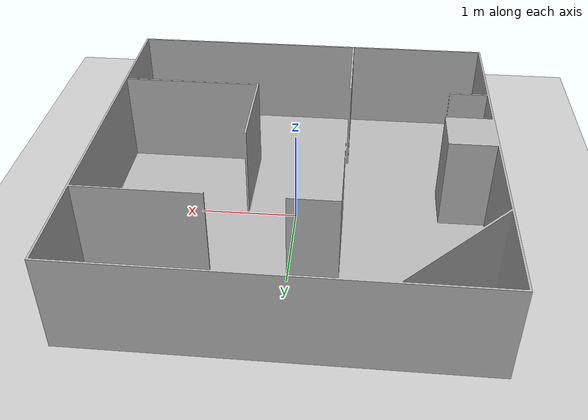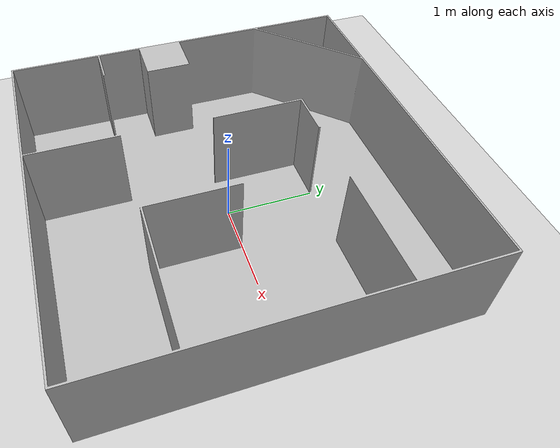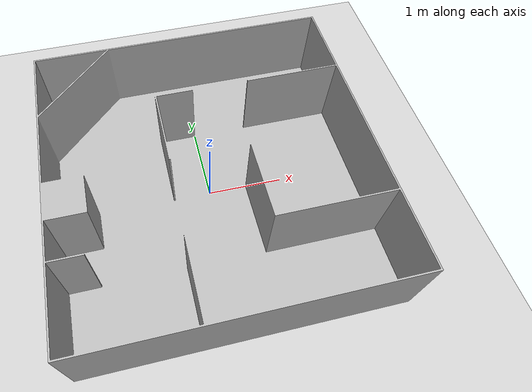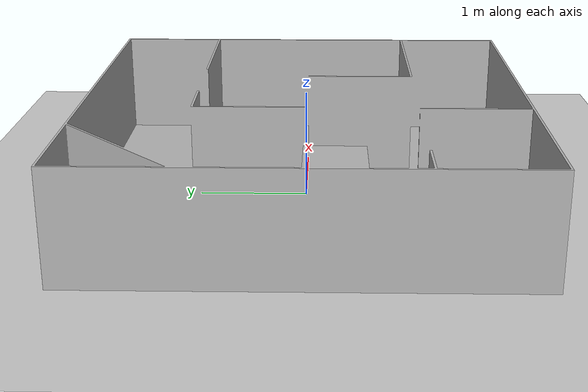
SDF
<sdf version='1.4'>
  <world name='default'>
    <!-- A global light source -->
    <include>
      <uri>model://sun</uri>
    </include>

    <!-- A ground plane -->
    <include>
      <uri>model://ground_plane</uri>
    </include>

    <physics type="ode">
      <real_time_update_rate>1000.0</real_time_update_rate>
      <max_step_size>0.001</max_step_size>
      <real_time_factor>1</real_time_factor>
      <ode>
        <solver>
          <type>quick</type>
          <iters>150</iters>
          <precon_iters>0</precon_iters>
          <sor>1.400000</sor>
          <use_dynamic_moi_rescaling>1</use_dynamic_moi_rescaling>
        </solver>
        <constraints>
          <cfm>0.00001</cfm>
          <erp>0.2</erp>
          <contact_max_correcting_vel>2000.000000</contact_max_correcting_vel>
          <contact_surface_layer>0.01000</contact_surface_layer>
        </constraints>
      </ode>
    </physics>

    <!-- A turtlebot symbol -->
    <include>
      <uri>model://wall</uri>
    </include>

    <scene>
      <ambient>0.4 0.4 0.4 1</ambient>
      <background>0.7 0.7 0.7 1</background>
      <shadows>true</shadows>
    </scene>

    <gui fullscreen='0'>
      <camera name='user_camera'>
        <pose>0.0 0.0 17.0 0 1.5708 0</pose>
        <view_controller>orbit</view_controller>
      </camera>
    </gui>
  </world>
</sdf>

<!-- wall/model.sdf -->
<sdf version="1.6">
  <model name="wall">
    <static>true</static>
    <link name="base_link">
      <visual name="visual">
        <geometry>
          <mesh>
            <uri>model://wall/meshes/new.stl</uri>
          </mesh>
        </geometry>
      </visual>
      <collision name="collision">
        <geometry>
          <mesh>
            <uri>model://wall/meshes/new.stl</uri>
          </mesh>
        </geometry>
      </collision>
      <inertial>
        <mass>1.0</mass>
        <inertia>
          <ixx>0.01</ixx>
          <iyy>0.01</iyy>
          <izz>0.01</izz>
        </inertia>
      </inertial>
    </link>
  </model>
</sdf>
